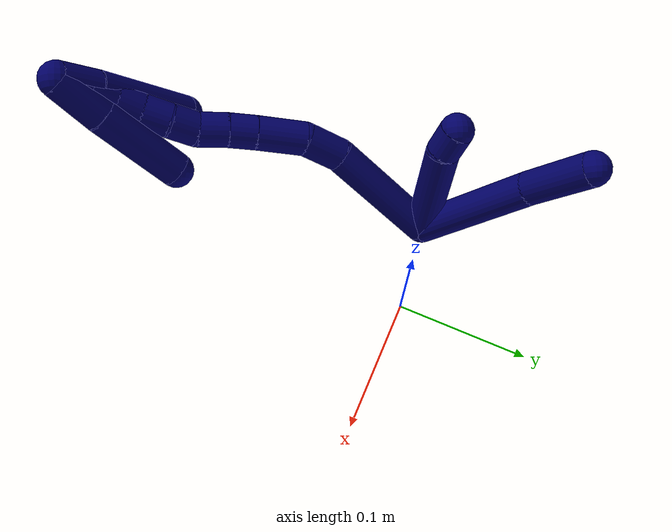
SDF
<sdf version="1.7">
 <world name="default">
  <model name="photoneo_s_sensor">
   <static>1</static>
   <pose>0 0 2 1.57079 1.57079 3.14159</pose>
   <link name="link">
    <inertial><mass>0.1</mass></inertial>
    <sensor name="sensor" type="depth">
     <update_rate>30</update_rate>
     <camera>
      <horizontal_fov>1.22</horizontal_fov>
      <image><width>1920</width><height>1200</height><format>B8G8R8</format></image>
      <clip><near>0.1</near><far>4</far></clip>
      <depth_camera><output>points</output></depth_camera>
     </camera>
     <plugin name="camera_plugin" filename="libgazebo_ros_depth_camera.so">
      <baseline>0.2</baseline>
      <alwaysOn>1</alwaysOn>
      <updateRate>0.0</updateRate>
      <cameraName>camera_ir</cameraName>
      <imageTopicName>/camera/color/image_raw</imageTopicName>
      <cameraInfoTopicName>/camera/color/camera_info</cameraInfoTopicName>
      <depthImageTopicName>/camera/depth/image_raw</depthImageTopicName>
      <depthImageCameraInfoTopicName>/camera/depth/camera_info</depthImageCameraInfoTopicName>
      <pointCloudTopicName>/camera/depth/points</pointCloudTopicName>
      <frameName>fr_optical</frameName>
      <pointCloudCutoff>0.1</pointCloudCutoff>
      <pointCloudCutoffMax>2.0</pointCloudCutoffMax>
      <distortionK1>0</distortionK1>
      <distortionK2>0</distortionK2>
      <distortionK3>0</distortionK3>
      <distortionT1>0</distortionT1>
      <distortionT2>0</distortionT2>
      <CxPrime>0</CxPrime>
      <Cx>0</Cx>
      <Cy>0</Cy>
      <focalLength>0</focalLength>
      <hackBaseline>0</hackBaseline>
     </plugin>
    </sensor>
   </link>
  </model>
  <model name="bin">
   <static>1</static>
   <link name="bottom">
    <collision name="collision-bottom">
     <pose>0 0 -0.01 0 -0 0</pose>
     <geometry><box><size>0.8 0.6 0.02</size></box></geometry>
     <surface>
      <friction><ode><mu>100</mu><mu2>100</mu2></ode></friction>
      <contact><collide_bitmask>65535</collide_bitmask></contact>
     </surface>
    </collision>
   </link>
   <link name="west_wall">
    <collision name="collision-west_wall">
     <pose>-0.41 0 0.1 0 -0 0</pose>
     <geometry><box><size>0.02 0.6 0.2</size></box></geometry>
     <surface>
      <friction><ode><mu>100</mu><mu2>100</mu2></ode></friction>
      <contact><collide_bitmask>65535</collide_bitmask></contact>
     </surface>
    </collision>
   </link>
   <link name="east_wall">
    <collision name="collision-east_wall">
     <pose>0.41 0 0.1 0 -0 0</pose>
     <geometry><box><size>0.02 0.6 0.2</size></box></geometry>
     <surface>
      <friction><ode><mu>100</mu><mu2>100</mu2></ode></friction>
      <contact><collide_bitmask>65535</collide_bitmask></contact>
     </surface>
    </collision>
   </link>
   <link name="south_wall">
    <collision name="collision-south_wall">
     <pose>0 -0.31 0.1 0 -0 0</pose>
     <geometry><box><size>0.8 0.02 0.2</size></box></geometry>
     <surface>
      <friction><ode><mu>100</mu><mu2>100</mu2></ode></friction>
      <contact><collide_bitmask>65535</collide_bitmask></contact>
     </surface>
    </collision>
   </link>
   <link name="north_wall">
    <collision name="collision-north_wall">
     <pose>0 0.31 0.1 0 -0 0</pose>
     <geometry><box><size>0.8 0.02 0.2</size></box></geometry>
     <surface>
      <friction><ode><mu>100</mu><mu2>100</mu2></ode></friction>
      <contact><collide_bitmask>65535</collide_bitmask></contact>
     </surface>
    </collision>
   </link>
  </model>
  <model name="7">
   <static>0</static>
   <link name="7">
    <collision name="collision-cylinder-e_1_2_8">
     <pose>0.046122 0.014706 0.007445 -1.10214 1.22756 -0.817266</pose>
     <geometry><cylinder><radius>0.0125</radius><length>0.097957</length></cylinder></geometry>
     <surface>
      <friction><ode><mu>1.16</mu><mu2>1.16</mu2><slip1>0</slip1><slip2>0</slip2></ode></friction>
      <contact><ode><kp>1e+06</kp><kd>1</kd><max_vel>0</max_vel><min_depth>0.001</min_depth></ode></contact>
     </surface>
    </collision>
    <visual name="visual-cylinder-e_1_2_8">
     <pose>0.046122 0.014706 0.007445 -1.10214 1.22756 -0.817266</pose>
     <geometry><cylinder><radius>0.0125</radius><length>0.097957</length></cylinder></geometry>
     <material><ambient>0.003922 0 0.403922 1</ambient></material>
    </visual>
    <collision name="collision-cylinder-e_2_8_6">
     <pose>0.117637 0.034727 0.016897 -1.20984 1.35071 -1.01152</pose>
     <geometry><cylinder><radius>0.0125</radius><length>0.052043</length></cylinder></geometry>
     <surface>
      <friction><ode><mu>1.16</mu><mu2>1.16</mu2><slip1>0</slip1><slip2>0</slip2></ode></friction>
      <contact><ode><kp>1e+06</kp><kd>1</kd><max_vel>0</max_vel><min_depth>0.001</min_depth></ode></contact>
     </surface>
    </collision>
    <visual name="visual-cylinder-e_2_8_6">
     <pose>0.117637 0.034727 0.016897 -1.20984 1.35071 -1.01152</pose>
     <geometry><cylinder><radius>0.0125</radius><length>0.052043</length></cylinder></geometry>
     <material><ambient>0.003922 0 0.403922 1</ambient></material>
    </visual>
    <collision name="collision-cylinder-e_1_2_9">
     <pose>0.03091 -0.010064 0.0228 0.41568 0.892239 0.201044</pose>
     <geometry><cylinder><radius>0.0125</radius><length>0.079412</length></cylinder></geometry>
     <surface>
      <friction><ode><mu>1.16</mu><mu2>1.16</mu2><slip1>0</slip1><slip2>0</slip2></ode></friction>
      <contact><ode><kp>1e+06</kp><kd>1</kd><max_vel>0</max_vel><min_depth>0.001</min_depth></ode></contact>
     </surface>
    </collision>
    <visual name="visual-cylinder-e_1_2_9">
     <pose>0.03091 -0.010064 0.0228 0.41568 0.892239 0.201044</pose>
     <geometry><cylinder><radius>0.0125</radius><length>0.079412</length></cylinder></geometry>
     <material><ambient>0.003922 0 0.403922 1</ambient></material>
    </visual>
    <collision name="collision-cylinder-e_2_9_5">
     <pose>0.07048 -0.019976 0.051164 -0.027309 0.999515 -0.014911</pose>
     <geometry><cylinder><radius>0.0125</radius><length>0.020588</length></cylinder></geometry>
     <surface>
      <friction><ode><mu>1.16</mu><mu2>1.16</mu2><slip1>0</slip1><slip2>0</slip2></ode></friction>
      <contact><ode><kp>1e+06</kp><kd>1</kd><max_vel>0</max_vel><min_depth>0.001</min_depth></ode></contact>
     </surface>
    </collision>
    <visual name="visual-cylinder-e_2_9_5">
     <pose>0.07048 -0.019976 0.051164 -0.027309 0.999515 -0.014911</pose>
     <geometry><cylinder><radius>0.0125</radius><length>0.020588</length></cylinder></geometry>
     <material><ambient>0.003922 0 0.403922 1</ambient></material>
    </visual>
    <collision name="collision-cylinder-e_1_2_10">
     <pose>0.003923 -0.037281 0.026207 0.958081 0.085865 0.044617</pose>
     <geometry><cylinder><radius>0.0125</radius><length>0.091478</length></cylinder></geometry>
     <surface>
      <friction><ode><mu>1.16</mu><mu2>1.16</mu2><slip1>0</slip1><slip2>0</slip2></ode></friction>
      <contact><ode><kp>1e+06</kp><kd>1</kd><max_vel>0</max_vel><min_depth>0.001</min_depth></ode></contact>
     </surface>
    </collision>
    <visual name="visual-cylinder-e_1_2_10">
     <pose>0.003923 -0.037281 0.026207 0.958081 0.085865 0.044617</pose>
     <geometry><cylinder><radius>0.0125</radius><length>0.091478</length></cylinder></geometry>
     <material><ambient>0.003922 0 0.403922 1</ambient></material>
    </visual>
    <collision name="collision-cylinder-e_2_10_11">
     <pose>0.007896 -0.088538 0.057739 1.20683 0.003405 0.002346</pose>
     <geometry><cylinder><radius>0.0125</radius><length>0.029912</length></cylinder></geometry>
     <surface>
      <friction><ode><mu>1.16</mu><mu2>1.16</mu2><slip1>0</slip1><slip2>0</slip2></ode></friction>
      <contact><ode><kp>1e+06</kp><kd>1</kd><max_vel>0</max_vel><min_depth>0.001</min_depth></ode></contact>
     </surface>
    </collision>
    <visual name="visual-cylinder-e_2_10_11">
     <pose>0.007896 -0.088538 0.057739 1.20683 0.003405 0.002346</pose>
     <geometry><cylinder><radius>0.0125</radius><length>0.029912</length></cylinder></geometry>
     <material><ambient>0.003922 0 0.403922 1</ambient></material>
    </visual>
    <collision name="collision-cylinder-e_3_11_12">
     <pose>0.004024 -0.119987 0.065237 1.44698 -0.219204 -0.193786</pose>
     <geometry><cylinder><radius>0.0125</radius><length>0.036078</length></cylinder></geometry>
     <surface>
      <friction><ode><mu>1.16</mu><mu2>1.16</mu2><slip1>0</slip1><slip2>0</slip2></ode></friction>
      <contact><ode><kp>1e+06</kp><kd>1</kd><max_vel>0</max_vel><min_depth>0.001</min_depth></ode></contact>
     </surface>
    </collision>
    <visual name="visual-cylinder-e_3_11_12">
     <pose>0.004024 -0.119987 0.065237 1.44698 -0.219204 -0.193786</pose>
     <geometry><cylinder><radius>0.0125</radius><length>0.036078</length></cylinder></geometry>
     <material><ambient>0.003922 0 0.403922 1</ambient></material>
    </visual>
    <collision name="collision-cylinder-e_4_12_13">
     <pose>-0.002238 -0.147162 0.068354 1.47402 -0.235563 -0.213976</pose>
     <geometry><cylinder><radius>0.0125</radius><length>0.02005</length></cylinder></geometry>
     <surface>
      <friction><ode><mu>1.16</mu><mu2>1.16</mu2><slip1>0</slip1><slip2>0</slip2></ode></friction>
      <contact><ode><kp>1e+06</kp><kd>1</kd><max_vel>0</max_vel><min_depth>0.001</min_depth></ode></contact>
     </surface>
    </collision>
    <visual name="visual-cylinder-e_4_12_13">
     <pose>-0.002238 -0.147162 0.068354 1.47402 -0.235563 -0.213976</pose>
     <geometry><cylinder><radius>0.0125</radius><length>0.02005</length></cylinder></geometry>
     <material><ambient>0.003922 0 0.403922 1</ambient></material>
    </visual>
    <collision name="collision-cylinder-e_5_13_14">
     <pose>-0.007181 -0.167613 0.069513 1.55059 -0.23757 -0.232861</pose>
     <geometry><cylinder><radius>0.0125</radius><length>0.022124</length></cylinder></geometry>
     <surface>
      <friction><ode><mu>1.16</mu><mu2>1.16</mu2><slip1>0</slip1><slip2>0</slip2></ode></friction>
      <contact><ode><kp>1e+06</kp><kd>1</kd><max_vel>0</max_vel><min_depth>0.001</min_depth></ode></contact>
     </surface>
    </collision>
    <visual name="visual-cylinder-e_5_13_14">
     <pose>-0.007181 -0.167613 0.069513 1.55059 -0.23757 -0.232861</pose>
     <geometry><cylinder><radius>0.0125</radius><length>0.022124</length></cylinder></geometry>
     <material><ambient>0.003922 0 0.403922 1</ambient></material>
    </visual>
    <collision name="collision-cylinder-e_6_14_15">
     <pose>-0.009722 -0.188143 0.07231 1.31284 0.006148 0.004736</pose>
     <geometry><cylinder><radius>0.0125</radius><length>0.020231</length></cylinder></geometry>
     <surface>
      <friction><ode><mu>1.16</mu><mu2>1.16</mu2><slip1>0</slip1><slip2>0</slip2></ode></friction>
      <contact><ode><kp>1e+06</kp><kd>1</kd><max_vel>0</max_vel><min_depth>0.001</min_depth></ode></contact>
     </surface>
    </collision>
    <visual name="visual-cylinder-e_6_14_15">
     <pose>-0.009722 -0.188143 0.07231 1.31284 0.006148 0.004736</pose>
     <geometry><cylinder><radius>0.0125</radius><length>0.020231</length></cylinder></geometry>
     <material><ambient>0.003922 0 0.403922 1</ambient></material>
    </visual>
    <collision name="collision-cylinder-e_7_15_16">
     <pose>-0.010909 -0.207395 0.077981 1.25543 -0.124668 -0.090517</pose>
     <geometry><cylinder><radius>0.0125</radius><length>0.020081</length></cylinder></geometry>
     <surface>
      <friction><ode><mu>1.16</mu><mu2>1.16</mu2><slip1>0</slip1><slip2>0</slip2></ode></friction>
      <contact><ode><kp>1e+06</kp><kd>1</kd><max_vel>0</max_vel><min_depth>0.001</min_depth></ode></contact>
     </surface>
    </collision>
    <visual name="visual-cylinder-e_7_15_16">
     <pose>-0.010909 -0.207395 0.077981 1.25543 -0.124668 -0.090517</pose>
     <geometry><cylinder><radius>0.0125</radius><length>0.020081</length></cylinder></geometry>
     <material><ambient>0.003922 0 0.403922 1</ambient></material>
    </visual>
    <collision name="collision-cylinder-e_8_16_17">
     <pose>-0.011784 -0.226305 0.084398 1.23191 0.037262 0.026376</pose>
     <geometry><cylinder><radius>0.0125</radius><length>0.020031</length></cylinder></geometry>
     <surface>
      <friction><ode><mu>1.16</mu><mu2>1.16</mu2><slip1>0</slip1><slip2>0</slip2></ode></friction>
      <contact><ode><kp>1e+06</kp><kd>1</kd><max_vel>0</max_vel><min_depth>0.001</min_depth></ode></contact>
     </surface>
    </collision>
    <visual name="visual-cylinder-e_8_16_17">
     <pose>-0.011784 -0.226305 0.084398 1.23191 0.037262 0.026376</pose>
     <geometry><cylinder><radius>0.0125</radius><length>0.020031</length></cylinder></geometry>
     <material><ambient>0.003922 0 0.403922 1</ambient></material>
    </visual>
    <collision name="collision-cylinder-e_9_17_18">
     <pose>-0.008939 -0.245306 0.08934 1.40351 0.249597 0.211296</pose>
     <geometry><cylinder><radius>0.0125</radius><length>0.020015</length></cylinder></geometry>
     <surface>
      <friction><ode><mu>1.16</mu><mu2>1.16</mu2><slip1>0</slip1><slip2>0</slip2></ode></friction>
      <contact><ode><kp>1e+06</kp><kd>1</kd><max_vel>0</max_vel><min_depth>0.001</min_depth></ode></contact>
     </surface>
    </collision>
    <visual name="visual-cylinder-e_9_17_18">
     <pose>-0.008939 -0.245306 0.08934 1.40351 0.249597 0.211296</pose>
     <geometry><cylinder><radius>0.0125</radius><length>0.020015</length></cylinder></geometry>
     <material><ambient>0.003922 0 0.403922 1</ambient></material>
    </visual>
    <collision name="collision-cylinder-e_10_18_1">
     <pose>-0.003827 -0.264349 0.092732 1.38542 0.267137 0.222108</pose>
     <geometry><cylinder><radius>0.0125</radius><length>0.02</length></cylinder></geometry>
     <surface>
      <friction><ode><mu>1.16</mu><mu2>1.16</mu2><slip1>0</slip1><slip2>0</slip2></ode></friction>
      <contact><ode><kp>1e+06</kp><kd>1</kd><max_vel>0</max_vel><min_depth>0.001</min_depth></ode></contact>
     </surface>
    </collision>
    <visual name="visual-cylinder-e_10_18_1">
     <pose>-0.003827 -0.264349 0.092732 1.38542 0.267137 0.222108</pose>
     <geometry><cylinder><radius>0.0125</radius><length>0.02</length></cylinder></geometry>
     <material><ambient>0.003922 0 0.403922 1</ambient></material>
    </visual>
    <collision name="collision-cylinder-e_1_1_19">
     <pose>-0.004778 -0.259275 0.084592 -2.169 -0.201143 0.377241</pose>
     <geometry><cylinder><radius>0.0125</radius><length>0.035949</length></cylinder></geometry>
     <surface>
      <friction><ode><mu>1.16</mu><mu2>1.16</mu2><slip1>0</slip1><slip2>0</slip2></ode></friction>
      <contact><ode><kp>1e+06</kp><kd>1</kd><max_vel>0</max_vel><min_depth>0.001</min_depth></ode></contact>
     </surface>
    </collision>
    <visual name="visual-cylinder-e_1_1_19">
     <pose>-0.004778 -0.259275 0.084592 -2.169 -0.201143 0.377241</pose>
     <geometry><cylinder><radius>0.0125</radius><length>0.035949</length></cylinder></geometry>
     <material><ambient>0.003922 0 0.403922 1</ambient></material>
    </visual>
    <collision name="collision-cylinder-e_2_19_4">
     <pose>-0.01485 -0.217735 0.058693 -2.10542 -0.203755 0.35492</pose>
     <geometry><cylinder><radius>0.0125</radius><length>0.064051</length></cylinder></geometry>
     <surface>
      <friction><ode><mu>1.16</mu><mu2>1.16</mu2><slip1>0</slip1><slip2>0</slip2></ode></friction>
      <contact><ode><kp>1e+06</kp><kd>1</kd><max_vel>0</max_vel><min_depth>0.001</min_depth></ode></contact>
     </surface>
    </collision>
    <visual name="visual-cylinder-e_2_19_4">
     <pose>-0.01485 -0.217735 0.058693 -2.10542 -0.203755 0.35492</pose>
     <geometry><cylinder><radius>0.0125</radius><length>0.064051</length></cylinder></geometry>
     <material><ambient>0.003922 0 0.403922 1</ambient></material>
    </visual>
    <collision name="collision-cylinder-e_1_1_20">
     <pose>-0.004545 -0.260545 0.093804 -1.62393 -0.247224 0.260573</pose>
     <geometry><cylinder><radius>0.0125</radius><length>0.02744</length></cylinder></geometry>
     <surface>
      <friction><ode><mu>1.16</mu><mu2>1.16</mu2><slip1>0</slip1><slip2>0</slip2></ode></friction>
      <contact><ode><kp>1e+06</kp><kd>1</kd><max_vel>0</max_vel><min_depth>0.001</min_depth></ode></contact>
     </surface>
    </collision>
    <visual name="visual-cylinder-e_1_1_20">
     <pose>-0.004545 -0.260545 0.093804 -1.62393 -0.247224 0.260573</pose>
     <geometry><cylinder><radius>0.0125</radius><length>0.02744</length></cylinder></geometry>
     <material><ambient>0.003922 0 0.403922 1</ambient></material>
    </visual>
    <collision name="collision-cylinder-e_2_20_3">
     <pose>-0.019465 -0.212991 0.090241 -1.65394 -0.324354 0.351952</pose>
     <geometry><cylinder><radius>0.0125</radius><length>0.07256</length></cylinder></geometry>
     <surface>
      <friction><ode><mu>1.16</mu><mu2>1.16</mu2><slip1>0</slip1><slip2>0</slip2></ode></friction>
      <contact><ode><kp>1e+06</kp><kd>1</kd><max_vel>0</max_vel><min_depth>0.001</min_depth></ode></contact>
     </surface>
    </collision>
    <visual name="visual-cylinder-e_2_20_3">
     <pose>-0.019465 -0.212991 0.090241 -1.65394 -0.324354 0.351952</pose>
     <geometry><cylinder><radius>0.0125</radius><length>0.07256</length></cylinder></geometry>
     <material><ambient>0.003922 0 0.403922 1</ambient></material>
    </visual>
    <collision name="collision-sphere-3">
     <pose>-0.031027 -0.178722 0.087386 0 -0 0</pose>
     <geometry><sphere><radius>0.0125</radius></sphere></geometry>
     <surface>
      <friction><ode><mu>1.16</mu><mu2>1.16</mu2><slip1>0</slip1><slip2>0</slip2></ode></friction>
      <contact><ode><kp>1e+06</kp><kd>1</kd><max_vel>0</max_vel><min_depth>0.001</min_depth></ode></contact>
     </surface>
    </collision>
    <visual name="visual-sphere-3">
     <pose>-0.031027 -0.178722 0.087386 0 -0 0</pose>
     <geometry><sphere><radius>0.0125</radius></sphere></geometry>
     <material><ambient>0.003922 0 0.403922 1</ambient></material>
    </visual>
    <collision name="collision-sphere-20">
     <pose>-0.007902 -0.247261 0.093097 0 -0 0</pose>
     <geometry><sphere><radius>0.0125</radius></sphere></geometry>
     <surface>
      <friction><ode><mu>1.16</mu><mu2>1.16</mu2><slip1>0</slip1><slip2>0</slip2></ode></friction>
      <contact><ode><kp>1e+06</kp><kd>1</kd><max_vel>0</max_vel><min_depth>0.001</min_depth></ode></contact>
     </surface>
    </collision>
    <visual name="visual-sphere-20">
     <pose>-0.007902 -0.247261 0.093097 0 -0 0</pose>
     <geometry><sphere><radius>0.0125</radius></sphere></geometry>
     <material><ambient>0.003922 0 0.403922 1</ambient></material>
    </visual>
    <collision name="collision-sphere-4">
     <pose>-0.02133 -0.190748 0.042713 0 -0 0</pose>
     <geometry><sphere><radius>0.0125</radius></sphere></geometry>
     <surface>
      <friction><ode><mu>1.16</mu><mu2>1.16</mu2><slip1>0</slip1><slip2>0</slip2></ode></friction>
      <contact><ode><kp>1e+06</kp><kd>1</kd><max_vel>0</max_vel><min_depth>0.001</min_depth></ode></contact>
     </surface>
    </collision>
    <visual name="visual-sphere-4">
     <pose>-0.02133 -0.190748 0.042713 0 -0 0</pose>
     <geometry><sphere><radius>0.0125</radius></sphere></geometry>
     <material><ambient>0.003922 0 0.403922 1</ambient></material>
    </visual>
    <collision name="collision-sphere-10">
     <pose>0.007845 -0.074562 0.052415 0 -0 0</pose>
     <geometry><sphere><radius>0.0125</radius></sphere></geometry>
     <surface>
      <friction><ode><mu>1.16</mu><mu2>1.16</mu2><slip1>0</slip1><slip2>0</slip2></ode></friction>
      <contact><ode><kp>1e+06</kp><kd>1</kd><max_vel>0</max_vel><min_depth>0.001</min_depth></ode></contact>
     </surface>
    </collision>
    <visual name="visual-sphere-10">
     <pose>0.007845 -0.074562 0.052415 0 -0 0</pose>
     <geometry><sphere><radius>0.0125</radius></sphere></geometry>
     <material><ambient>0.003922 0 0.403922 1</ambient></material>
    </visual>
    <collision name="collision-sphere-5">
     <pose>0.079139 -0.019824 0.056728 0 -0 0</pose>
     <geometry><sphere><radius>0.0125</radius></sphere></geometry>
     <surface>
      <friction><ode><mu>1.16</mu><mu2>1.16</mu2><slip1>0</slip1><slip2>0</slip2></ode></friction>
      <contact><ode><kp>1e+06</kp><kd>1</kd><max_vel>0</max_vel><min_depth>0.001</min_depth></ode></contact>
     </surface>
    </collision>
    <visual name="visual-sphere-5">
     <pose>0.079139 -0.019824 0.056728 0 -0 0</pose>
     <geometry><sphere><radius>0.0125</radius></sphere></geometry>
     <material><ambient>0.003922 0 0.403922 1</ambient></material>
    </visual>
    <collision name="collision-sphere-6">
     <pose>0.143031 0.040041 0.018903 0 -0 0</pose>
     <geometry><sphere><radius>0.0125</radius></sphere></geometry>
     <surface>
      <friction><ode><mu>1.16</mu><mu2>1.16</mu2><slip1>0</slip1><slip2>0</slip2></ode></friction>
      <contact><ode><kp>1e+06</kp><kd>1</kd><max_vel>0</max_vel><min_depth>0.001</min_depth></ode></contact>
     </surface>
    </collision>
    <visual name="visual-sphere-6">
     <pose>0.143031 0.040041 0.018903 0 -0 0</pose>
     <geometry><sphere><radius>0.0125</radius></sphere></geometry>
     <material><ambient>0.003922 0 0.403922 1</ambient></material>
    </visual>
    <collision name="collision-sphere-9">
     <pose>0.061821 -0.020128 0.0456 0 -0 0</pose>
     <geometry><sphere><radius>0.0125</radius></sphere></geometry>
     <surface>
      <friction><ode><mu>1.16</mu><mu2>1.16</mu2><slip1>0</slip1><slip2>0</slip2></ode></friction>
      <contact><ode><kp>1e+06</kp><kd>1</kd><max_vel>0</max_vel><min_depth>0.001</min_depth></ode></contact>
     </surface>
    </collision>
    <visual name="visual-sphere-9">
     <pose>0.061821 -0.020128 0.0456 0 -0 0</pose>
     <geometry><sphere><radius>0.0125</radius></sphere></geometry>
     <material><ambient>0.003922 0 0.403922 1</ambient></material>
    </visual>
    <collision name="collision-sphere-2">
     <geometry><sphere><radius>0.0125</radius></sphere></geometry>
     <surface>
      <friction><ode><mu>1.16</mu><mu2>1.16</mu2><slip1>0</slip1><slip2>0</slip2></ode></friction>
      <contact><ode><kp>1e+06</kp><kd>1</kd><max_vel>0</max_vel><min_depth>0.001</min_depth></ode></contact>
     </surface>
    </collision>
    <visual name="visual-sphere-2">
     <geometry><sphere><radius>0.0125</radius></sphere></geometry>
     <material><ambient>0.003922 0 0.403922 1</ambient></material>
    </visual>
    <collision name="collision-sphere-19">
     <pose>-0.00837 -0.244721 0.074673 0 -0 0</pose>
     <geometry><sphere><radius>0.0125</radius></sphere></geometry>
     <surface>
      <friction><ode><mu>1.16</mu><mu2>1.16</mu2><slip1>0</slip1><slip2>0</slip2></ode></friction>
      <contact><ode><kp>1e+06</kp><kd>1</kd><max_vel>0</max_vel><min_depth>0.001</min_depth></ode></contact>
     </surface>
    </collision>
    <visual name="visual-sphere-19">
     <pose>-0.00837 -0.244721 0.074673 0 -0 0</pose>
     <geometry><sphere><radius>0.0125</radius></sphere></geometry>
     <material><ambient>0.003922 0 0.403922 1</ambient></material>
    </visual>
    <collision name="collision-sphere-8">
     <pose>0.092243 0.029412 0.01489 0 -0 0</pose>
     <geometry><sphere><radius>0.0125</radius></sphere></geometry>
     <surface>
      <friction><ode><mu>1.16</mu><mu2>1.16</mu2><slip1>0</slip1><slip2>0</slip2></ode></friction>
      <contact><ode><kp>1e+06</kp><kd>1</kd><max_vel>0</max_vel><min_depth>0.001</min_depth></ode></contact>
     </surface>
    </collision>
    <visual name="visual-sphere-8">
     <pose>0.092243 0.029412 0.01489 0 -0 0</pose>
     <geometry><sphere><radius>0.0125</radius></sphere></geometry>
     <material><ambient>0.003922 0 0.403922 1</ambient></material>
    </visual>
    <collision name="collision-sphere-11">
     <pose>0.007947 -0.102514 0.063063 0 -0 0</pose>
     <geometry><sphere><radius>0.0125</radius></sphere></geometry>
     <surface>
      <friction><ode><mu>1.16</mu><mu2>1.16</mu2><slip1>0</slip1><slip2>0</slip2></ode></friction>
      <contact><ode><kp>1e+06</kp><kd>1</kd><max_vel>0</max_vel><min_depth>0.001</min_depth></ode></contact>
     </surface>
    </collision>
    <visual name="visual-sphere-11">
     <pose>0.007947 -0.102514 0.063063 0 -0 0</pose>
     <geometry><sphere><radius>0.0125</radius></sphere></geometry>
     <material><ambient>0.003922 0 0.403922 1</ambient></material>
    </visual>
    <collision name="collision-sphere-12">
     <pose>0.000102 -0.137459 0.067412 0 -0 0</pose>
     <geometry><sphere><radius>0.0125</radius></sphere></geometry>
     <surface>
      <friction><ode><mu>1.16</mu><mu2>1.16</mu2><slip1>0</slip1><slip2>0</slip2></ode></friction>
      <contact><ode><kp>1e+06</kp><kd>1</kd><max_vel>0</max_vel><min_depth>0.001</min_depth></ode></contact>
     </surface>
    </collision>
    <visual name="visual-sphere-12">
     <pose>0.000102 -0.137459 0.067412 0 -0 0</pose>
     <geometry><sphere><radius>0.0125</radius></sphere></geometry>
     <material><ambient>0.003922 0 0.403922 1</ambient></material>
    </visual>
    <collision name="collision-sphere-13">
     <pose>-0.004578 -0.156864 0.069296 0 -0 0</pose>
     <geometry><sphere><radius>0.0125</radius></sphere></geometry>
     <surface>
      <friction><ode><mu>1.16</mu><mu2>1.16</mu2><slip1>0</slip1><slip2>0</slip2></ode></friction>
      <contact><ode><kp>1e+06</kp><kd>1</kd><max_vel>0</max_vel><min_depth>0.001</min_depth></ode></contact>
     </surface>
    </collision>
    <visual name="visual-sphere-13">
     <pose>-0.004578 -0.156864 0.069296 0 -0 0</pose>
     <geometry><sphere><radius>0.0125</radius></sphere></geometry>
     <material><ambient>0.003922 0 0.403922 1</ambient></material>
    </visual>
    <collision name="collision-sphere-14">
     <pose>-0.009784 -0.178362 0.06973 0 -0 0</pose>
     <geometry><sphere><radius>0.0125</radius></sphere></geometry>
     <surface>
      <friction><ode><mu>1.16</mu><mu2>1.16</mu2><slip1>0</slip1><slip2>0</slip2></ode></friction>
      <contact><ode><kp>1e+06</kp><kd>1</kd><max_vel>0</max_vel><min_depth>0.001</min_depth></ode></contact>
     </surface>
    </collision>
    <visual name="visual-sphere-14">
     <pose>-0.009784 -0.178362 0.06973 0 -0 0</pose>
     <geometry><sphere><radius>0.0125</radius></sphere></geometry>
     <material><ambient>0.003922 0 0.403922 1</ambient></material>
    </visual>
    <collision name="collision-sphere-15">
     <pose>-0.00966 -0.197923 0.074891 0 -0 0</pose>
     <geometry><sphere><radius>0.0125</radius></sphere></geometry>
     <surface>
      <friction><ode><mu>1.16</mu><mu2>1.16</mu2><slip1>0</slip1><slip2>0</slip2></ode></friction>
      <contact><ode><kp>1e+06</kp><kd>1</kd><max_vel>0</max_vel><min_depth>0.001</min_depth></ode></contact>
     </surface>
    </collision>
    <visual name="visual-sphere-15">
     <pose>-0.00966 -0.197923 0.074891 0 -0 0</pose>
     <geometry><sphere><radius>0.0125</radius></sphere></geometry>
     <material><ambient>0.003922 0 0.403922 1</ambient></material>
    </visual>
    <collision name="collision-sphere-16">
     <pose>-0.012157 -0.216866 0.081071 0 -0 0</pose>
     <geometry><sphere><radius>0.0125</radius></sphere></geometry>
     <surface>
      <friction><ode><mu>1.16</mu><mu2>1.16</mu2><slip1>0</slip1><slip2>0</slip2></ode></friction>
      <contact><ode><kp>1e+06</kp><kd>1</kd><max_vel>0</max_vel><min_depth>0.001</min_depth></ode></contact>
     </surface>
    </collision>
    <visual name="visual-sphere-16">
     <pose>-0.012157 -0.216866 0.081071 0 -0 0</pose>
     <geometry><sphere><radius>0.0125</radius></sphere></geometry>
     <material><ambient>0.003922 0 0.403922 1</ambient></material>
    </visual>
    <collision name="collision-sphere-17">
     <pose>-0.011411 -0.235744 0.087725 0 -0 0</pose>
     <geometry><sphere><radius>0.0125</radius></sphere></geometry>
     <surface>
      <friction><ode><mu>1.16</mu><mu2>1.16</mu2><slip1>0</slip1><slip2>0</slip2></ode></friction>
      <contact><ode><kp>1e+06</kp><kd>1</kd><max_vel>0</max_vel><min_depth>0.001</min_depth></ode></contact>
     </surface>
    </collision>
    <visual name="visual-sphere-17">
     <pose>-0.011411 -0.235744 0.087725 0 -0 0</pose>
     <geometry><sphere><radius>0.0125</radius></sphere></geometry>
     <material><ambient>0.003922 0 0.403922 1</ambient></material>
    </visual>
    <collision name="collision-sphere-18">
     <pose>-0.006467 -0.254869 0.090955 0 -0 0</pose>
     <geometry><sphere><radius>0.0125</radius></sphere></geometry>
     <surface>
      <friction><ode><mu>1.16</mu><mu2>1.16</mu2><slip1>0</slip1><slip2>0</slip2></ode></friction>
      <contact><ode><kp>1e+06</kp><kd>1</kd><max_vel>0</max_vel><min_depth>0.001</min_depth></ode></contact>
     </surface>
    </collision>
    <visual name="visual-sphere-18">
     <pose>-0.006467 -0.254869 0.090955 0 -0 0</pose>
     <geometry><sphere><radius>0.0125</radius></sphere></geometry>
     <material><ambient>0.003922 0 0.403922 1</ambient></material>
    </visual>
    <collision name="collision-sphere-1">
     <pose>-0.001187 -0.273829 0.09451 0 -0 0</pose>
     <geometry><sphere><radius>0.0125</radius></sphere></geometry>
     <surface>
      <friction><ode><mu>1.16</mu><mu2>1.16</mu2><slip1>0</slip1><slip2>0</slip2></ode></friction>
      <contact><ode><kp>1e+06</kp><kd>1</kd><max_vel>0</max_vel><min_depth>0.001</min_depth></ode></contact>
     </surface>
    </collision>
    <visual name="visual-sphere-1">
     <pose>-0.001187 -0.273829 0.09451 0 -0 0</pose>
     <geometry><sphere><radius>0.0125</radius></sphere></geometry>
     <material><ambient>0.003922 0 0.403922 1</ambient></material>
    </visual>
    <inertial>
     <pose>0.015353 -0.111441 0.050858 0 -0 0</pose>
     <mass>0.75</mass>
     <inertia>
      <ixx>0.000216</ixx>
      <ixy>0</ixy>
      <ixz>0</ixz>
      <iyy>0.000166</iyy>
      <iyz>0</iyz>
      <izz>-0.000108</izz>
     </inertia>
    </inertial>
   </link>
   <pose>-0.063598 -0.00839 0.012846 -0.998491 -1.02065 1.5417</pose>
  </model>
 </world>
</sdf>
